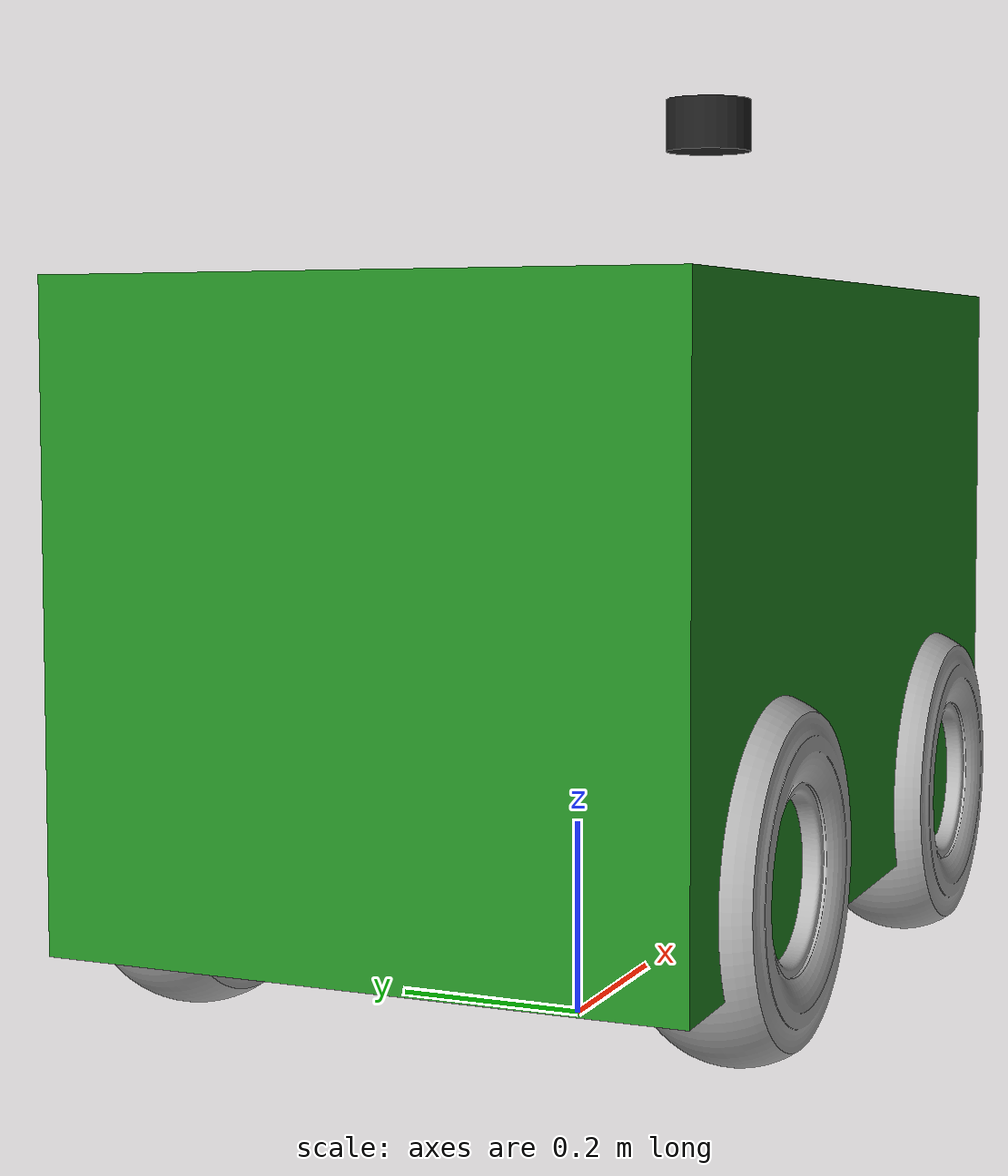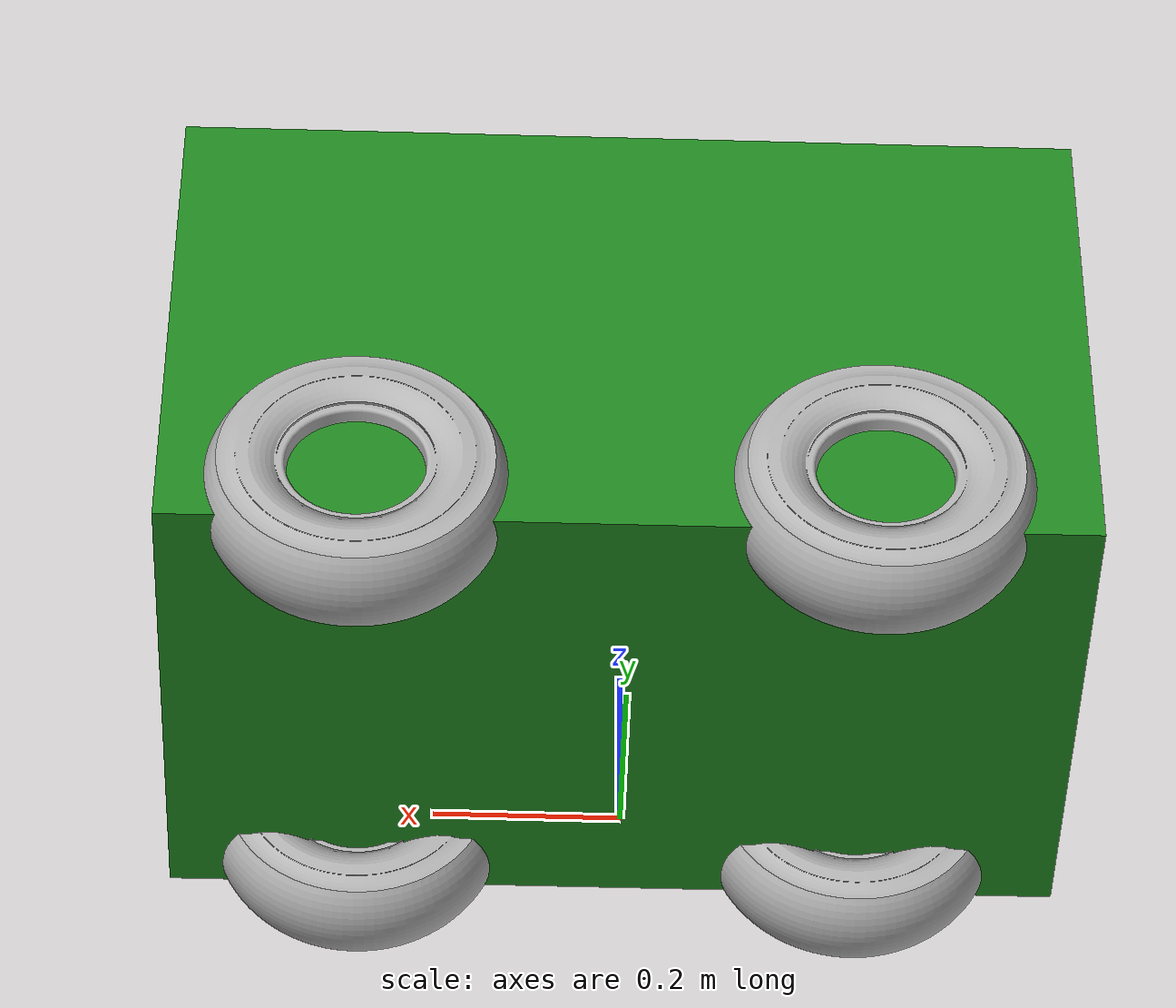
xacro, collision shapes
<?xml version="1.0" encoding="utf-8"?>
<robot name="zebrat" xmlns:xacro="http://www.ros.org/wiki/xacro">

  <xacro:arg name="gpu" default="false"/>
  <xacro:property name="gpu" value="$(arg gpu)" />
  <xacro:arg name="organize_cloud" default="false"/>
  <xacro:property name="organize_cloud" value="$(arg organize_cloud)" />

  <xacro:include filename="$(find velodyne_description)/urdf/VLP-16.urdf.xacro"/>
  <xacro:VLP-16 parent="base_link" name="velodyne" topic="/velodyne_points" organize_cloud="${organize_cloud}" hz="10" samples="440" gpu="${gpu}">
    <origin xyz="0.38 0 0.07" rpy="0 0 0" />
  </xacro:VLP-16>

  <xacro:include filename="$(find zebrat)/urdf/sensors/lidar.xacro" />
  <joint name="lidar_joint" type="fixed">
    <origin xyz="0.4 0 0.5" rpy="0 0 0" />
    <parent link="base_link"/>
    <child link="laser_link"/>
  </joint>
  <lidar prefix="laser"/>

  <xacro:include filename="$(find zebrat)/urdf/sensors/imu.xacro" />
  <joint name="imu_joint" type="fixed">
    <origin  xyz="0.0 0 0" rpy="0 0 0" />
    <parent link="base_link"/>
    <child link="imu_link"/>
  </joint>
  <imu prefix="imu"/>

  <material name="Blue">
    <color rgba="0 0 1 1"/>
  </material>
  <material name="Grey">
    <color rgba="0.5 0.5 0.5 1"/>
  </material>
  <material name="Black">
    <color rgba="0 0 0 1"/>
  </material>
  <material name="Green">
    <color rgba="0.25 0.8 0.25 1"/>
  </material>

  <link name="base_footprint"/>

  <link
    name="base_link">
    <inertial>
      <origin
        xyz="0.070574 -0.0043486 -0.067094"
        rpy="0 0 0" />
      <mass
        value="35.776" />
      <inertia
        ixx="2.14656"
        ixy="0.0"
        ixz="0.0"
        iyy="4.0546"
        iyz="0.0"
        izz="4.0546" />
    </inertial>
    <visual>
      <origin
        xyz="0 0 0"
        rpy="0 0 0" />
      <geometry>
        <mesh
          filename="package://zebrat/meshes/base_link.STL" />
      </geometry>
      <material
        name="Green">
        <color rgba="0.13 0.54 0.13 1.0"/>
      </material>
    </visual>
    <collision>
      <origin
        xyz="0 0 0"
        rpy="0 0 0" />
      <geometry>
        <box size = "1.0 0.6 0.6"/>
      </geometry>
    </collision>
  </link>
  <gazebo reference="$base_link">
    <material>Gazebo/Green</material>
  </gazebo>

  <joint
    name="footprint2base"
    type="fixed">
    <origin
      xyz="0 0 0.45"
      rpy="0 0 0" />
    <parent
      link="base_footprint" />
    <child
      link="base_link" />
    <axis
      xyz="0 0 0" />
  </joint>

  <link
    name="rl_wheel">
    <inertial>
      <origin
        xyz="3.0351E-07 7.0113E-05 5.1237E-07"
        rpy="0 0 0" />
      <mass
        value="1.1552" />
      <inertia
        ixx="0.011871"
        ixy="2.7831E-11"
        ixz="1.6436E-09"
        iyy="0.020263"
        iyz="-8.4684E-12"
        izz="0.011871" />
    </inertial>
    <visual>
      <origin
        xyz="0 0 0"
        rpy="0 0 0" />
      <geometry>
        <mesh
          filename="package://zebrat/meshes/lr_wheel.STL" />
      </geometry>
      <material
        name="">
        <color
          rgba="0.69804 0.69804 0.69804 1" />
      </material>
    </visual>
    <collision>
      <origin
        xyz="0 0 0"
        rpy="0 0 0" />
      <geometry>
        <mesh
          filename="package://zebrat/meshes/lr_wheel.STL" />
      </geometry>
    </collision>
  </link>
  <gazebo reference="$rl_wheel">
    <material>Gazebo/Black</material>
  </gazebo>

  <gazebo>
    <plugin name="gazebo_ros_control" filename="libgazebo_ros_control.so">
    <legacyModeNS>true</legacyModeNS>
    <robotSimType>gazebo_ros_control/DefaultRobotHWSim</robotSimType>
    <robotNamespace>/zebrat</robotNamespace>
    </plugin>
  </gazebo>

  <joint
    name="rl_axle"
    type="continuous">
    <origin
      xyz="-0.2709 0.27237 -0.22667"
      rpy="0 0 0" />
    <parent
      link="base_link" />
    <child
      link="rl_wheel" />
    <axis
      xyz="0 1 0" />
    <limit
      effort="100.0"
      velocity="200.0" />
  </joint>
  <transmission name="rl_tran">
    <type>transmission_interface/SimpleTransmission</type>
    <joint name="rl_axle">
      <hardwareInterface>hardware_interface/EffortJointInterface</hardwareInterface>
    </joint>
    <actuator name="rl_act">
      <!-- This hardwareInterface element exists for compatibility
           with ROS Hydro. -->
      <hardwareInterface>hardware_interface/EffortJointInterface</hardwareInterface>
      <mechanicalReduction>1</mechanicalReduction>
    </actuator>
  </transmission>

  <link
    name="rr_wheel">
    <inertial>
      <origin
        xyz="-3.0351E-07 -7.0113E-05 5.1237E-07"
        rpy="0 0 0" />
      <mass
        value="1.1552" />
      <inertia
        ixx="0.011871"
        ixy="2.7831E-11"
        ixz="-1.6436E-09"
        iyy="0.020263"
        iyz="8.4684E-12"
        izz="0.011871" />
    </inertial>
    <visual>
      <origin
        xyz="0 0 0"
        rpy="0 0 0" />
      <geometry>
        <mesh
          filename="package://zebrat/meshes/rr_wheel.STL" />
      </geometry>
      <material
        name="">
        <color
          rgba="0.69804 0.69804 0.69804 1" />
      </material>
    </visual>
    <collision>
      <origin
        xyz="0 0 0"
        rpy="0 0 0" />
      <geometry>
        <mesh
          filename="package://zebrat/meshes/rr_wheel.STL" />
      </geometry>
    </collision>
  </link>
  <gazebo reference="$rr_wheel">
    <material>Gazebo/Black</material>
  </gazebo>

  <joint
    name="rr_axle"
    type="continuous">
    <origin
      xyz="-0.2709 -0.27237 -0.22667"
      rpy="0 0 0" />
    <parent
      link="base_link" />
    <child
      link="rr_wheel" />
    <axis
      xyz="0 1 0" />
    <limit
      effort="100.0"
      velocity="200.0" />
  </joint>
  <transmission name="rr_tran">
    <type>transmission_interface/SimpleTransmission</type>
    <joint name="rr_axle">
      <hardwareInterface>hardware_interface/EffortJointInterface</hardwareInterface>
    </joint>
    <actuator name="rr_act">
      <!-- This hardwareInterface element exists for compatibility
           with ROS Hydro. -->
      <hardwareInterface>hardware_interface/EffortJointInterface</hardwareInterface>
      <mechanicalReduction>1</mechanicalReduction>
    </actuator>
  </transmission>

  <link
    name="lstr_link">
    <inertial>
      <origin
        xyz="5.5511E-17 0 -0.025"
        rpy="0 0 0" />
      <mass
        value="0.14579" />
      <inertia
        ixx="9.1697E-05"
        ixy="3.1179E-23"
        ixz="7.588E-20"
        iyy="9.1697E-05"
        iyz="-1.876E-20"
        izz="6.5014E-06" />
    </inertial>
    <visual>
      <origin
        xyz="0 0 0"
        rpy="0 0 0" />
      <geometry>
        <mesh
          filename="package://zebrat/meshes/lstr_link.STL" />
      </geometry>
      <material
        name="">
        <color
          rgba="0.69804 0.69804 0.69804 1" />
      </material>
    </visual>
    <collision>
      <origin
        xyz="0 0 0"
        rpy="0 0 0" />
      <geometry>
        <mesh
          filename="package://zebrat/meshes/lstr_link.STL" />
      </geometry>
    </collision>
  </link>
  <joint
    name="base2lstr"
    type="revolute">
    <origin
      xyz="0.2891 0.21125 -0.20084"
      rpy="0 0 0" />
    <parent
      link="base_link" />
    <child
      link="lstr_link" />
    <axis
      xyz="0 0 1" />
    <limit
      lower="-0.6"
      upper="0.6"
      effort="10.0"
      velocity="20.0" />
  </joint>

  <transmission name="lstr_tran">
    <type>transmission_interface/SimpleTransmission</type>
    <joint name="base2lstr">
      <hardwareInterface>hardware_interface/EffortJointInterface</hardwareInterface>
    </joint>
    <actuator name="lstr_act">
      <!-- This hardwareInterface element exists for compatibility
           with ROS Hydro. -->
      <hardwareInterface>hardware_interface/EffortJointInterface</hardwareInterface>
      <mechanicalReduction>1</mechanicalReduction>
    </actuator>
  </transmission>

  <link
    name="fl_wheel">
    <inertial>
      <origin
        xyz="-3.3596E-07 -0.0053454 -1.922E-07"
        rpy="0 0 0" />
      <mass
        value="1.7625" />
      <inertia
        ixx="0.012197"
        ixy="-4.1791E-12"
        ixz="1.5688E-09"
        iyy="0.020893"
        iyz="2.7769E-11"
        izz="0.012197" />
    </inertial>
    <visual>
      <origin
        xyz="0 0 0"
        rpy="0 0 0" />
      <geometry>
        <mesh
          filename="package://zebrat/meshes/lf_wheel.STL" />
      </geometry>
      <material
        name="">
        <color
          rgba="0.69804 0.69804 0.69804 1" />
      </material>
    </visual>
    <collision>
      <origin
        xyz="0 0 0"
        rpy="0 0 0" />
      <geometry>
        <mesh
          filename="package://zebrat/meshes/lf_wheel.STL" />
      </geometry>
    </collision>
  </link>
  <gazebo reference="$fl_wheel">
    <material>Gazebo/Black</material>
  </gazebo>

  <joint
    name="fl_axle"
    type="continuous">
    <origin
      xyz="0 0.0655 -0.031746"
      rpy="0 0 0" />
    <parent
      link="lstr_link" />
    <child
      link="fl_wheel" />
    <axis
      xyz="0 1 0" />
    <limit
      effort="100.0"
      velocity="200.0" />
  </joint>
  <transmission name="fl_tran">
    <type>transmission_interface/SimpleTransmission</type>
    <joint name="fl_axle">
      <hardwareInterface>hardware_interface/EffortJointInterface</hardwareInterface>
    </joint>
    <actuator name="fl_act">
      <!-- This hardwareInterface element exists for compatibility
           with ROS Hydro. -->
      <hardwareInterface>hardware_interface/EffortJointInterface</hardwareInterface>
      <mechanicalReduction>1</mechanicalReduction>
    </actuator>
  </transmission>

  <link
    name="rstr_link">
    <inertial>
      <origin
        xyz="-1.1102E-16 -2.7756E-17 -0.025"
        rpy="0 0 0" />
      <mass
        value="0.14579" />
      <inertia
        ixx="9.1697E-05"
        ixy="3.1694E-23"
        ixz="-1.0543E-19"
        iyy="9.1697E-05"
        iyz="1.8742E-20"
        izz="6.5014E-06" />
    </inertial>
    <visual>
      <origin
        xyz="0 0 0"
        rpy="0 0 0" />
      <geometry>
        <mesh
          filename="package://zebrat/meshes/rstr_link.STL" />
      </geometry>
      <material
        name="">
        <color
          rgba="0.69804 0.69804 0.69804 1" />
      </material>
    </visual>
    <collision>
      <origin
        xyz="0 0 0"
        rpy="0 0 0" />
      <geometry>
        <mesh
          filename="package://zebrat/meshes/rstr_link.STL" />
      </geometry>
    </collision>
  </link>

  <joint
    name="base2rstr"
    type="revolute">
    <origin
      xyz="0.2891 -0.21125 -0.20084"
      rpy="0 0 0" />
    <parent
      link="base_link" />
    <child
      link="rstr_link" />
    <axis
      xyz="0 0 1" />
    <limit
      lower="-0.6"
      upper="0.6"
      effort="10.0"
      velocity="20.0" />
  </joint>
  <transmission name="rstr_tran">
    <type>transmission_interface/SimpleTransmission</type>
    <joint name="base2rstr">
      <hardwareInterface>hardware_interface/EffortJointInterface</hardwareInterface>
    </joint>
    <actuator name="rstr_act">
      <!-- This hardwareInterface element exists for compatibility
           with ROS Hydro. -->
      <hardwareInterface>hardware_interface/EffortJointInterface</hardwareInterface>
      <mechanicalReduction>1</mechanicalReduction>
    </actuator>
  </transmission>

  <link
    name="fr_wheel">
    <inertial>
      <origin
        xyz="-3.3596E-07 0.0053454 1.922E-07"
        rpy="0 0 0" />
      <mass
        value="1.7625" />
      <inertia
        ixx="0.012197"
        ixy="3.9087E-12"
        ixz="-1.5688E-09"
        iyy="0.020893"
        iyz="2.7769E-11"
        izz="0.012197" />
    </inertial>
    <visual>
      <origin
        xyz="0 0 0"
        rpy="0 0 0" />
      <geometry>
        <mesh
          filename="package://zebrat/meshes/rf_wheel.STL" />
      </geometry>
      <material
        name="">
        <color
          rgba="0.69804 0.69804 0.69804 1" />
      </material>
    </visual>
    <collision>
      <origin
        xyz="0 0 0"
        rpy="0 0 0" />
      <geometry>
        <mesh
          filename="package://zebrat/meshes/rf_wheel.STL" />
      </geometry>
    </collision>
  </link>
  <gazebo reference="$fr_wheel">
    <material>Gazebo/Black</material>
  </gazebo>

  <joint
    name="fr_axle"
    type="continuous">
    <origin
      xyz="0 -0.0655 -0.031746"
      rpy="0 0 0" />
    <parent
      link="rstr_link" />
    <child
      link="fr_wheel" />
    <axis
      xyz="0 1 0" />
    <limit
      effort="100.0"
      velocity="200.0" />
  </joint>

  <transmission name="fr_tran">
    <type>transmission_interface/SimpleTransmission</type>
    <joint name="fr_axle">
      <hardwareInterface>hardware_interface/EffortJointInterface</hardwareInterface>
    </joint>
    <actuator name="fr_act">
      <!-- This hardwareInterface element exists for compatibility
           with ROS Hydro. -->
      <hardwareInterface>hardware_interface/EffortJointInterface</hardwareInterface>
      <mechanicalReduction>1</mechanicalReduction>
    </actuator>
  </transmission>
</robot>

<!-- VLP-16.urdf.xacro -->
<robot xmlns:xacro="http://www.ros.org/wiki/xacro" name="VLP-16">
  <xacro:property name="M_PI" value="3.1415926535897931" />
  <xacro:macro name="VLP-16" params="*origin parent:=base_Link name:=velodyne topic:=/velodyne_points organize_cloud:=false hz:=10 lasers:=16 samples:=1875 collision_range:=0.3 min_range:=0.9 max_range:=130.0 noise:=0.008 min_angle:=-${M_PI} max_angle:=${M_PI} gpu:=false">

    <joint name="${name}_base_mount_joint" type="fixed">
      <xacro:insert_block name="origin" />
      <parent link="${parent}"/>
      <child link="${name}_base_link"/>
    </joint>

    <link name="${name}_base_link">
      <inertial>
        <mass value="0.001"/>
        <origin xyz="0 0 0.03585"/>
        <inertia ixx="${(0.001 * (3.0*0.0516*0.0516 + 0.0717*0.0717)) / 12.0}" ixy="0" ixz="0"
          iyy="${(0.001 * (3.0*0.0516*0.0516 + 0.0717*0.0717)) / 12.0}" iyz="0"
          izz="${0.5 * 0.001 * (0.0516*0.0516)}"/>
      </inertial>
      <visual>
        <geometry>
          <mesh filename="package://velodyne_description/meshes/VLP16_base_1.dae" />
        </geometry>
      </visual>
      <visual>
        <geometry>
          <mesh filename="package://velodyne_description/meshes/VLP16_base_2.dae" />
        </geometry>
      </visual>
      <collision>
        <origin rpy="0 0 0" xyz="0 0 0.03585"/>
        <geometry>
          <cylinder radius="0.0516" length="0.0717"/>
        </geometry>
      </collision>
    </link>

    <joint name="${name}_base_scan_joint" type="fixed" >
      <origin xyz="0 0 0.0377" rpy="0 0 0" />
      <parent link="${name}_base_link" />
      <child link="${name}"/>
    </joint>

    <link name="${name}">
      <inertial>
        <mass value="0.01"/>
        <origin xyz="0 0 0"/>
        <inertia ixx="1e-7" ixy="0" ixz="0" iyy="1e-7" iyz="0" izz="1e-7"/>
      </inertial>
      <visual>
        <origin xyz="0 0 -0.0377" />
        <geometry>
          <mesh filename="package://velodyne_description/meshes/VLP16_scan.dae" />
        </geometry>
      </visual>
    </link>

    <!-- Gazebo requires the velodyne_gazebo_plugins package -->
    <gazebo reference="${name}">
      <xacro:if value="${gpu}">
        <sensor type="gpu_ray" name="${name}-VLP16">
          <pose>0 0 0 0 0 0</pose>
          <visualize>false</visualize>
          <update_rate>${hz}</update_rate>
          <ray>
            <scan>
              <horizontal>
                <samples>${samples}</samples>
                <resolution>1</resolution>
                <min_angle>${min_angle}</min_angle>
                <max_angle>${max_angle}</max_angle>
              </horizontal>
              <vertical>
                <samples>${lasers}</samples>
                <resolution>1</resolution>
                <min_angle>-${15.0*M_PI/180.0}</min_angle>
                <max_angle> ${15.0*M_PI/180.0}</max_angle>
              </vertical>
            </scan>
            <range>
              <min>${collision_range}</min>
              <max>${max_range+1}</max>
              <resolution>0.001</resolution>
            </range>
            <noise>
              <type>gaussian</type>
              <mean>0.0</mean>
              <stddev>0.0</stddev>
            </noise>
          </ray>
          <plugin name="gazebo_ros_laser_controller" filename="libgazebo_ros_velodyne_gpu_laser.so">
            <topicName>${topic}</topicName>
            <frameName>${name}</frameName>
            <organize_cloud>${organize_cloud}</organize_cloud>
            <min_range>${min_range}</min_range>
            <max_range>${max_range}</max_range>
            <gaussianNoise>${noise}</gaussianNoise>
          </plugin>
        </sensor>
      </xacro:if>
      <xacro:unless value="${gpu}">
        <sensor type="ray" name="${name}-VLP16">
          <pose>0 0 0 0 0 0</pose>
          <visualize>false</visualize>
          <update_rate>${hz}</update_rate>
          <ray>
            <scan>
              <horizontal>
                <samples>${samples}</samples>
                <resolution>1</resolution>
                <min_angle>${min_angle}</min_angle>
                <max_angle>${max_angle}</max_angle>
              </horizontal>
              <vertical>
                <samples>${lasers}</samples>
                <resolution>1</resolution>
                <min_angle>-${15.0*M_PI/180.0}</min_angle>
                <max_angle> ${15.0*M_PI/180.0}</max_angle>
              </vertical>
            </scan>
            <range>
              <min>${collision_range}</min>
              <max>${max_range+1}</max>
              <resolution>0.001</resolution>
            </range>
            <noise>
              <type>gaussian</type>
              <mean>0.0</mean>
              <stddev>0.0</stddev>
            </noise>
          </ray>
          <plugin name="gazebo_ros_laser_controller" filename="libgazebo_ros_velodyne_laser.so">
            <topicName>${topic}</topicName>
            <frameName>${name}</frameName>
            <organize_cloud>${organize_cloud}</organize_cloud>
            <min_range>${min_range}</min_range>
            <max_range>${max_range}</max_range>
            <gaussianNoise>${noise}</gaussianNoise>
          </plugin>
        </sensor>
      </xacro:unless>
    </gazebo>

  </xacro:macro>
</robot>

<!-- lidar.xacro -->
<robot xmlns:xacro="http://www.ros.org/wiki/xacro" name="lidar">

    <xacro:macro name="lidar" params="prefix:=laser">
        <!-- Create laser reference frame -->
        <link name="laser_link">
            <inertial>
                <mass value="0.001" />
                <origin xyz="0 0 0" />
                <inertia ixx="0.001" ixy="0.0" ixz="0.0"
                         iyy="0.001" iyz="0.0"
                         izz="0.001" />
            </inertial>

            <visual>
                <origin xyz=" 0 0 0 " rpy="0 0 0" />
                <geometry>
                    <cylinder length="0.05" radius="0.05"/>
                </geometry>
                <material name="black"/>
            </visual>

            <collision>
                <origin xyz="0.0 0.0 0.0" rpy="0 0 0" />
                <geometry>
                    <cylinder length="0.06" radius="0.05"/>
                </geometry>
            </collision>
        </link>
        <gazebo reference="laser_link">
            <material>Gazebo/Black</material>
        </gazebo>

        <gazebo reference="laser_link">
            <sensor type="ray" name="ls01g">
                <pose>0 0 0 0 0 0</pose>
                <visualize>true</visualize>
                <update_rate>10.0</update_rate>
                <ray>
                    <scan>
                        <horizontal>
                            <samples>361</samples>
                            <resolution>1</resolution>
                            <min_angle>-3.1415926</min_angle>
                            <max_angle>3.1415926</max_angle>
                        </horizontal>
                    </scan>
                    <range>
                        <min>0.10</min>
                        <max>8.0</max>
                        <resolution>0.01</resolution>
                    </range>
                    <noise>
                        <type>gaussian</type>
                        <mean>0.0</mean>
                        <stddev>0.01</stddev>
                    </noise>
                </ray>
                <plugin name="gazebo_ls01g" filename="libgazebo_ros_laser.so">
                    <topicName>/scan</topicName>
                    <frameName>laser_link</frameName>
                </plugin>
            </sensor>
        </gazebo>

    </xacro:macro>
</robot>

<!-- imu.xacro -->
<robot xmlns:xacro="http://www.ros.org/wiki/xacro" name="imu">

    <xacro:macro name="imu" params="prefix:=imu">
        <!-- Create laser reference frame -->
        <link name="${prefix}_link">
            <inertial>
                <mass value="0.001" />
                <origin xyz="0 0 0" />
                <inertia ixx="0.001" ixy="0.0" ixz="0.0"
                         iyy="0.001" iyz="0.0"
                         izz="0.001" />
            </inertial>

            <visual>
                <origin xyz=" 0 0 0 " rpy="0 0 0" />
                <geometry>
                    <box size="0.04 0.04 0.03" />
                </geometry>
                <material name="black"/>
            </visual>

            <collision>
                <origin xyz="0.0 0.0 0.0" rpy="0 0 0" />
                <geometry>
                    <box size="0.04 0.04 0.03" />
                </geometry>
            </collision>
        </link>
        <gazebo reference="${prefix}_link">
            <material>Gazebo/Black</material>
        </gazebo>

        <gazebo reference="${prefix}_link">
            <gravity>true</gravity>
            <sensor name="imu_sensor" type="imu">
                <always_on>true</always_on>
                <update_rate>100</update_rate>
                <visualize>true</visualize>
                <topic>/imu_data</topic>
                <plugin filename="libgazebo_ros_imu_sensor.so" name="imu_plugin">
                    <topicName>/imu</topicName>
                    <bodyName>imu_link</bodyName>
                    <updateRateHZ>100.0</updateRateHZ>
                    <gaussianNoise>0.0</gaussianNoise>
                    <xyzOffset>0 0 0</xyzOffset>
                    <rpyOffset>0 0 0</rpyOffset>
                    <frameName>imu_link</frameName>
                </plugin>
                <pose>0 0 0 0 0 0</pose>
            </sensor>
        </gazebo>

    </xacro:macro>
</robot>
